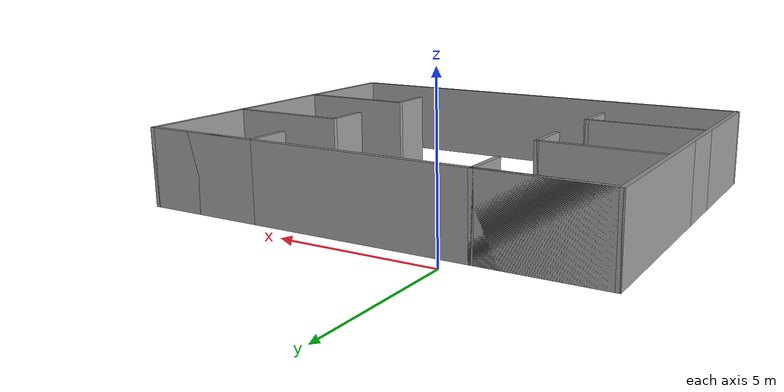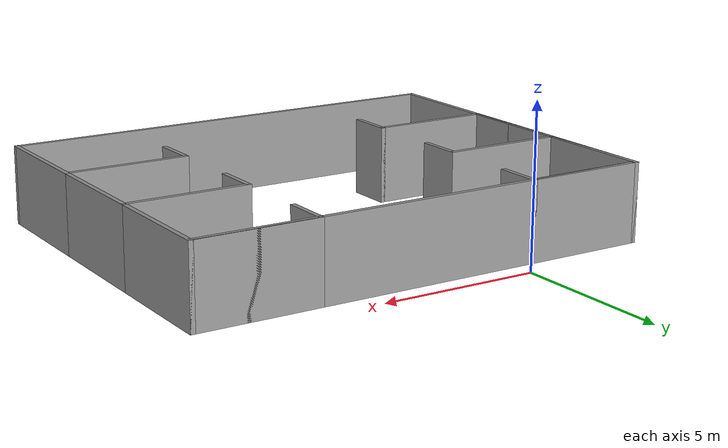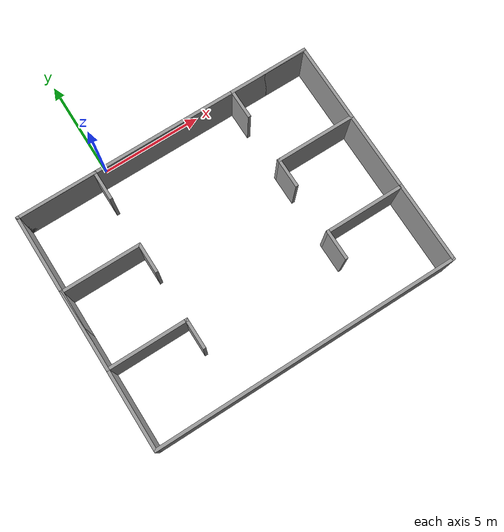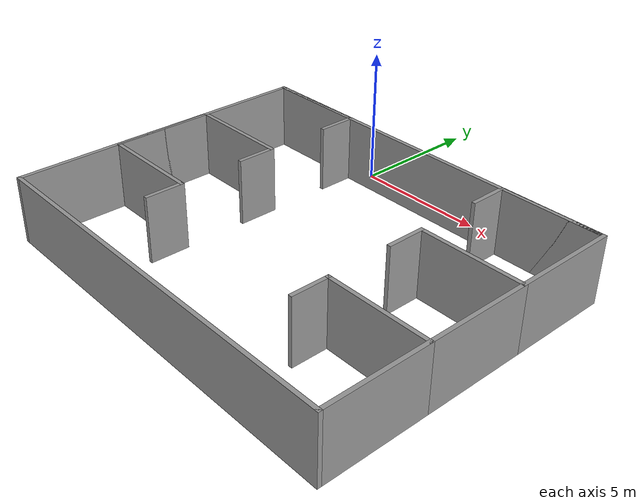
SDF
<?xml version='1.0'?>
<sdf version='1.7'>
  <model name='room1'>
    <pose>3.005 -6.1625 0 0 -0 0</pose>
    <link name='Wall_0'>
      <collision name='Wall_0_Collision'>
        <geometry>
          <box>
            <size>15 0.15 2.5</size>
          </box>
        </geometry>
        <pose>0 0 1.25 0 -0 0</pose>
      </collision>
      <visual name='Wall_0_Visual'>
        <pose>0 0 1.25 0 -0 0</pose>
        <geometry>
          <box>
            <size>15 0.15 2.5</size>
          </box>
        </geometry>
        <material>
          <script>
            <uri>file://media/materials/scripts/gazebo.material</uri>
            <name>Gazebo/Grey</name>
          </script>
          <ambient>1 1 1 1</ambient>
        </material>
        <meta>
          <layer>0</layer>
        </meta>
      </visual>
      <pose>0 5.4625 0 0 -0 0</pose>
    </link>
    <link name='Wall_1'>
      <collision name='Wall_1_Collision'>
        <geometry>
          <box>
            <size>4 0.15 2.5</size>
          </box>
        </geometry>
        <pose>0 0 1.25 0 -0 0</pose>
      </collision>
      <visual name='Wall_1_Visual'>
        <pose>0 0 1.25 0 -0 0</pose>
        <geometry>
          <box>
            <size>4 0.15 2.5</size>
          </box>
        </geometry>
        <material>
          <script>
            <uri>file://media/materials/scripts/gazebo.material</uri>
            <name>Gazebo/Grey</name>
          </script>
          <ambient>1 1 1 1</ambient>
        </material>
        <meta>
          <layer>0</layer>
        </meta>
      </visual>
      <pose>7.425 3.5375 0 0 -0 -1.5708</pose>
    </link>
    <link name='Wall_2'>
      <collision name='Wall_2_Collision'>
        <geometry>
          <box>
            <size>4 0.15 2.5</size>
          </box>
        </geometry>
        <pose>0 0 1.25 0 -0 0</pose>
      </collision>
      <visual name='Wall_2_Visual'>
        <pose>0 0 1.25 0 -0 0</pose>
        <geometry>
          <box>
            <size>4 0.15 2.5</size>
          </box>
        </geometry>
        <material>
          <script>
            <uri>file://media/materials/scripts/gazebo.material</uri>
            <name>Gazebo/Grey</name>
          </script>
          <ambient>1 1 1 1</ambient>
        </material>
        <meta>
          <layer>0</layer>
        </meta>
      </visual>
      <pose>5.5 1.6125 0 0 -0 3.14159</pose>
    </link>
    <link name='Wall_24'>
      <collision name='Wall_24_Collision'>
        <geometry>
          <box>
            <size>4 0.15 2.5</size>
          </box>
        </geometry>
        <pose>0 0 1.25 0 -0 0</pose>
      </collision>
      <visual name='Wall_24_Visual'>
        <pose>0 0 1.25 0 -0 0</pose>
        <geometry>
          <box>
            <size>4 0.15 2.5</size>
          </box>
        </geometry>
        <material>
          <script>
            <uri>file://media/materials/scripts/gazebo.material</uri>
            <name>Gazebo/Grey</name>
          </script>
          <ambient>1 1 1 1</ambient>
        </material>
        <meta>
          <layer>0</layer>
        </meta>
      </visual>
      <pose>7.425 -4.1625 0 0 -0 -1.5708</pose>
    </link>
    <link name='Wall_25'>
      <collision name='Wall_25_Collision'>
        <geometry>
          <box>
            <size>15 0.15 2.5</size>
          </box>
        </geometry>
        <pose>0 0 1.25 0 -0 0</pose>
      </collision>
      <visual name='Wall_25_Visual'>
        <pose>0 0 1.25 0 -0 0</pose>
        <geometry>
          <box>
            <size>15 0.15 2.5</size>
          </box>
        </geometry>
        <material>
          <script>
            <uri>file://media/materials/scripts/gazebo.material</uri>
            <name>Gazebo/Grey</name>
          </script>
          <ambient>1 1 1 1</ambient>
        </material>
        <meta>
          <layer>0</layer>
        </meta>
      </visual>
      <pose>0 -6.0875 0 0 -0 3.14159</pose>
    </link>
    <link name='Wall_26'>
      <collision name='Wall_26_Collision'>
        <geometry>
          <box>
            <size>11.7 0.15 2.5</size>
          </box>
        </geometry>
        <pose>0 0 1.25 0 -0 0</pose>
      </collision>
      <visual name='Wall_26_Visual'>
        <pose>0 0 1.25 0 -0 0</pose>
        <geometry>
          <box>
            <size>11.7 0.15 2.5</size>
          </box>
        </geometry>
        <material>
          <script>
            <uri>file://media/materials/scripts/gazebo.material</uri>
            <name>Gazebo/Grey</name>
          </script>
          <ambient>1 1 1 1</ambient>
        </material>
        <meta>
          <layer>0</layer>
        </meta>
      </visual>
      <pose>-7.425 -0.3125 0 0 -0 1.5708</pose>
    </link>
    <link name='Wall_28'>
      <collision name='Wall_28_Collision'>
        <geometry>
          <box>
            <size>4 0.15 2.5</size>
          </box>
        </geometry>
        <pose>0 0 1.25 0 -0 0</pose>
      </collision>
      <visual name='Wall_28_Visual'>
        <pose>0 0 1.25 0 -0 0</pose>
        <geometry>
          <box>
            <size>4 0.15 2.5</size>
          </box>
        </geometry>
        <material>
          <script>
            <uri>file://media/materials/scripts/gazebo.material</uri>
            <name>Gazebo/Grey</name>
          </script>
          <ambient>1 1 1 1</ambient>
        </material>
        <meta>
          <layer>0</layer>
        </meta>
      </visual>
      <pose>5.5 5.4625 0 0 -0 3.14159</pose>
    </link>
    <link name='Wall_29'>
      <collision name='Wall_29_Collision'>
        <geometry>
          <box>
            <size>1.5 0.15 2.5</size>
          </box>
        </geometry>
        <pose>0 0 1.25 0 -0 0</pose>
      </collision>
      <visual name='Wall_29_Visual'>
        <pose>0 0 1.25 0 -0 0</pose>
        <geometry>
          <box>
            <size>1.5 0.15 2.5</size>
          </box>
        </geometry>
        <material>
          <script>
            <uri>file://media/materials/scripts/gazebo.material</uri>
            <name>Gazebo/Grey</name>
          </script>
          <ambient>1 1 1 1</ambient>
        </material>
        <meta>
          <layer>0</layer>
        </meta>
      </visual>
      <pose>3.575 4.7875 0 0 -0 -1.5708</pose>
    </link>
    <link name='Wall_3'>
      <collision name='Wall_3_Collision'>
        <geometry>
          <box>
            <size>1.5 0.15 2.5</size>
          </box>
        </geometry>
        <pose>0 0 1.25 0 -0 0</pose>
      </collision>
      <visual name='Wall_3_Visual'>
        <pose>0 0 1.25 0 -0 0</pose>
        <geometry>
          <box>
            <size>1.5 0.15 2.5</size>
          </box>
        </geometry>
        <material>
          <script>
            <uri>file://media/materials/scripts/gazebo.material</uri>
            <name>Gazebo/Grey</name>
          </script>
          <ambient>1 1 1 1</ambient>
        </material>
        <meta>
          <layer>0</layer>
        </meta>
      </visual>
      <pose>3.575 0.9375 0 0 -0 -1.5708</pose>
    </link>
    <link name='Wall_31'>
      <collision name='Wall_31_Collision'>
        <geometry>
          <box>
            <size>4 0.15 2.5</size>
          </box>
        </geometry>
        <pose>0 0 1.25 0 -0 0</pose>
      </collision>
      <visual name='Wall_31_Visual'>
        <pose>0 0 1.25 0 -0 0</pose>
        <geometry>
          <box>
            <size>4 0.15 2.5</size>
          </box>
        </geometry>
        <material>
          <script>
            <uri>file://media/materials/scripts/gazebo.material</uri>
            <name>Gazebo/Grey</name>
          </script>
          <ambient>1 1 1 1</ambient>
        </material>
        <meta>
          <layer>0</layer>
        </meta>
      </visual>
      <pose>-5.5 5.4625 0 0 -0 0</pose>
    </link>
    <link name='Wall_32'>
      <collision name='Wall_32_Collision'>
        <geometry>
          <box>
            <size>1.5 0.15 2.5</size>
          </box>
        </geometry>
        <pose>0 0 1.25 0 -0 0</pose>
      </collision>
      <visual name='Wall_32_Visual'>
        <pose>0 0 1.25 0 -0 0</pose>
        <geometry>
          <box>
            <size>1.5 0.15 2.5</size>
          </box>
        </geometry>
        <material>
          <script>
            <uri>file://media/materials/scripts/gazebo.material</uri>
            <name>Gazebo/Grey</name>
          </script>
          <ambient>1 1 1 1</ambient>
        </material>
        <meta>
          <layer>0</layer>
        </meta>
      </visual>
      <pose>-3.575 4.7875 0 0 -0 -1.5708</pose>
    </link>
    <link name='Wall_34'>
      <collision name='Wall_34_Collision'>
        <geometry>
          <box>
            <size>4 0.15 2.5</size>
          </box>
        </geometry>
        <pose>0 0 1.25 0 -0 0</pose>
      </collision>
      <visual name='Wall_34_Visual'>
        <pose>0 0 1.25 0 -0 0</pose>
        <geometry>
          <box>
            <size>4 0.15 2.5</size>
          </box>
        </geometry>
        <material>
          <script>
            <uri>file://media/materials/scripts/gazebo.material</uri>
            <name>Gazebo/Grey</name>
          </script>
          <ambient>1 1 1 1</ambient>
        </material>
        <meta>
          <layer>0</layer>
        </meta>
      </visual>
      <pose>-7.425 3.5375 0 0 -0 -1.5708</pose>
    </link>
    <link name='Wall_35'>
      <collision name='Wall_35_Collision'>
        <geometry>
          <box>
            <size>4 0.15 2.5</size>
          </box>
        </geometry>
        <pose>0 0 1.25 0 -0 0</pose>
      </collision>
      <visual name='Wall_35_Visual'>
        <pose>0 0 1.25 0 -0 0</pose>
        <geometry>
          <box>
            <size>4 0.15 2.5</size>
          </box>
        </geometry>
        <material>
          <script>
            <uri>file://media/materials/scripts/gazebo.material</uri>
            <name>Gazebo/Grey</name>
          </script>
          <ambient>1 1 1 1</ambient>
        </material>
        <meta>
          <layer>0</layer>
        </meta>
      </visual>
      <pose>-5.5 1.6125 0 0 -0 0</pose>
    </link>
    <link name='Wall_36'>
      <collision name='Wall_36_Collision'>
        <geometry>
          <box>
            <size>1.5 0.15 2.5</size>
          </box>
        </geometry>
        <pose>0 0 1.25 0 -0 0</pose>
      </collision>
      <visual name='Wall_36_Visual'>
        <pose>0 0 1.25 0 -0 0</pose>
        <geometry>
          <box>
            <size>1.5 0.15 2.5</size>
          </box>
        </geometry>
        <material>
          <script>
            <uri>file://media/materials/scripts/gazebo.material</uri>
            <name>Gazebo/Grey</name>
          </script>
          <ambient>1 1 1 1</ambient>
        </material>
        <meta>
          <layer>0</layer>
        </meta>
      </visual>
      <pose>-3.575 0.9375 0 0 -0 -1.5708</pose>
    </link>
    <link name='Wall_38'>
      <collision name='Wall_38_Collision'>
        <geometry>
          <box>
            <size>4 0.15 2.5</size>
          </box>
        </geometry>
        <pose>0 0 1.25 0 -0 0</pose>
      </collision>
      <visual name='Wall_38_Visual'>
        <pose>0 0 1.25 0 -0 0</pose>
        <geometry>
          <box>
            <size>4 0.15 2.5</size>
          </box>
        </geometry>
        <material>
          <script>
            <uri>file://media/materials/scripts/gazebo.material</uri>
            <name>Gazebo/Grey</name>
          </script>
          <ambient>1 1 1 1</ambient>
        </material>
        <meta>
          <layer>0</layer>
        </meta>
      </visual>
      <pose>-7.425 -0.3125 0 0 -0 -1.5708</pose>
    </link>
    <link name='Wall_39'>
      <collision name='Wall_39_Collision'>
        <geometry>
          <box>
            <size>4 0.15 2.5</size>
          </box>
        </geometry>
        <pose>0 0 1.25 0 -0 0</pose>
      </collision>
      <visual name='Wall_39_Visual'>
        <pose>0 0 1.25 0 -0 0</pose>
        <geometry>
          <box>
            <size>4 0.15 2.5</size>
          </box>
        </geometry>
        <material>
          <script>
            <uri>file://media/materials/scripts/gazebo.material</uri>
            <name>Gazebo/Grey</name>
          </script>
          <ambient>1 1 1 1</ambient>
        </material>
        <meta>
          <layer>0</layer>
        </meta>
      </visual>
      <pose>-5.5 -2.2375 0 0 -0 0</pose>
    </link>
    <link name='Wall_40'>
      <collision name='Wall_40_Collision'>
        <geometry>
          <box>
            <size>1.5 0.15 2.5</size>
          </box>
        </geometry>
        <pose>0 0 1.25 0 -0 0</pose>
      </collision>
      <visual name='Wall_40_Visual'>
        <pose>0 0 1.25 0 -0 0</pose>
        <geometry>
          <box>
            <size>1.5 0.15 2.5</size>
          </box>
        </geometry>
        <material>
          <script>
            <uri>file://media/materials/scripts/gazebo.material</uri>
            <name>Gazebo/Grey</name>
          </script>
          <ambient>1 1 1 1</ambient>
        </material>
        <meta>
          <layer>0</layer>
        </meta>
      </visual>
      <pose>-3.575 -2.9125 0 0 -0 -1.5708</pose>
    </link>
    <link name='Wall_5'>
      <collision name='Wall_5_Collision'>
        <geometry>
          <box>
            <size>4 0.15 2.5</size>
          </box>
        </geometry>
        <pose>0 0 1.25 0 -0 0</pose>
      </collision>
      <visual name='Wall_5_Visual'>
        <pose>0 0 1.25 0 -0 0</pose>
        <geometry>
          <box>
            <size>4 0.15 2.5</size>
          </box>
        </geometry>
        <material>
          <script>
            <uri>file://media/materials/scripts/gazebo.material</uri>
            <name>Gazebo/Grey</name>
          </script>
          <ambient>1 1 1 1</ambient>
        </material>
        <meta>
          <layer>0</layer>
        </meta>
      </visual>
      <pose>7.425 -0.3125 0 0 -0 -1.5708</pose>
    </link>
    <link name='Wall_6'>
      <collision name='Wall_6_Collision'>
        <geometry>
          <box>
            <size>4 0.15 2.5</size>
          </box>
        </geometry>
        <pose>0 0 1.25 0 -0 0</pose>
      </collision>
      <visual name='Wall_6_Visual'>
        <pose>0 0 1.25 0 -0 0</pose>
        <geometry>
          <box>
            <size>4 0.15 2.5</size>
          </box>
        </geometry>
        <material>
          <script>
            <uri>file://media/materials/scripts/gazebo.material</uri>
            <name>Gazebo/Grey</name>
          </script>
          <ambient>1 1 1 1</ambient>
        </material>
        <meta>
          <layer>0</layer>
        </meta>
      </visual>
      <pose>5.5 -2.2375 0 0 -0 3.14159</pose>
    </link>
    <link name='Wall_7'>
      <collision name='Wall_7_Collision'>
        <geometry>
          <box>
            <size>1.5 0.15 2.5</size>
          </box>
        </geometry>
        <pose>0 0 1.25 0 -0 0</pose>
      </collision>
      <visual name='Wall_7_Visual'>
        <pose>0 0 1.25 0 -0 0</pose>
        <geometry>
          <box>
            <size>1.5 0.15 2.5</size>
          </box>
        </geometry>
        <material>
          <script>
            <uri>file://media/materials/scripts/gazebo.material</uri>
            <name>Gazebo/Grey</name>
          </script>
          <ambient>1 1 1 1</ambient>
        </material>
        <meta>
          <layer>0</layer>
        </meta>
      </visual>
      <pose>3.575 -2.9125 0 0 -0 -1.5708</pose>
    </link>
    <static>1</static>
  </model>
</sdf>
